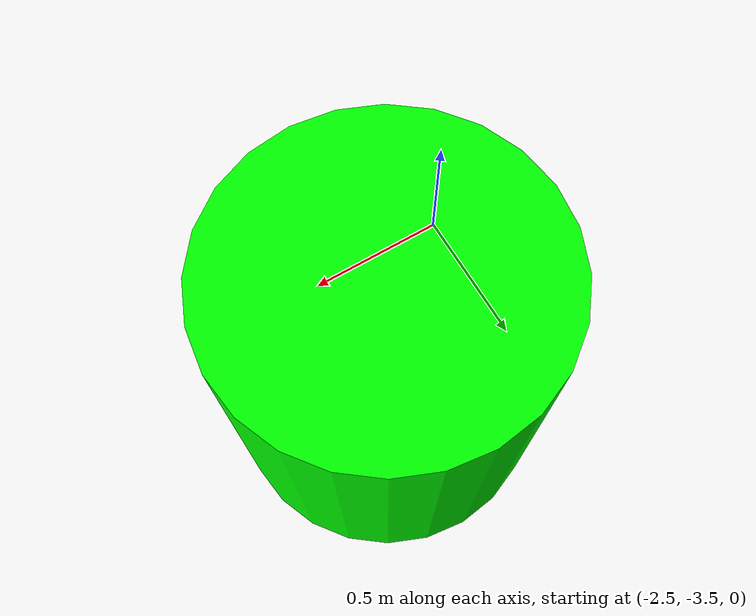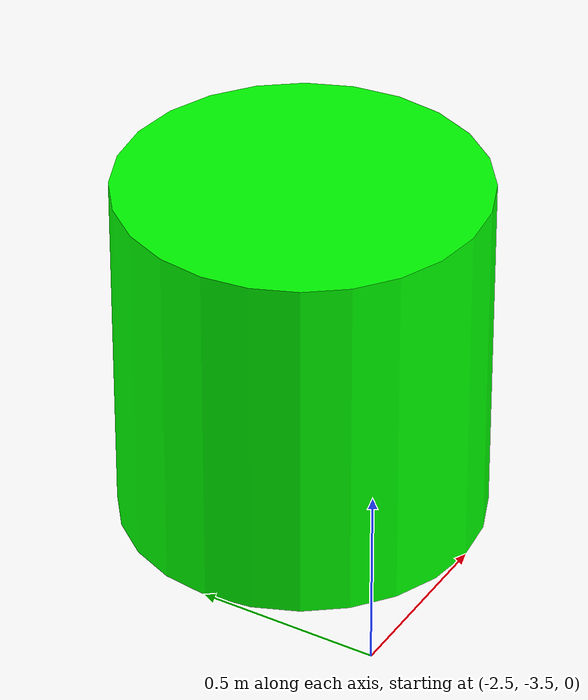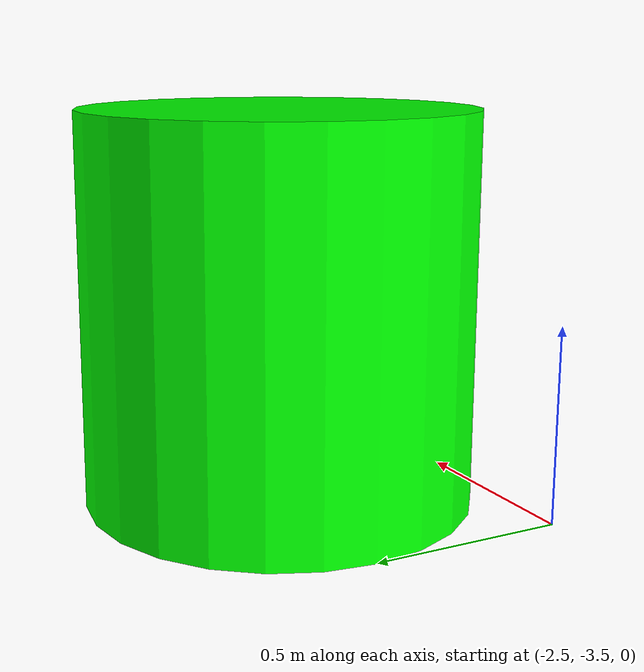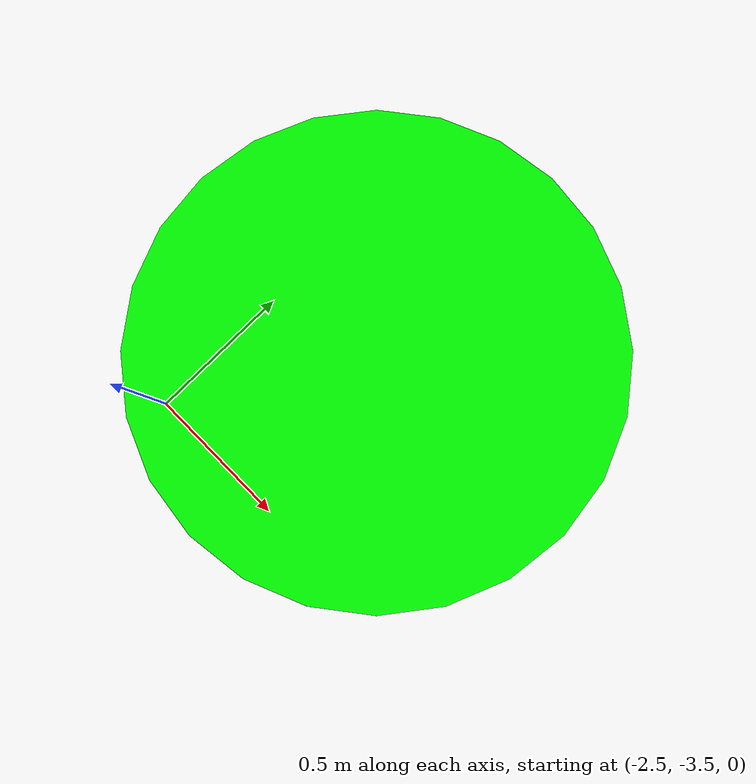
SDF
<?xml version="1.0" ?>
<sdf version="1.10">
    <model name="greenCylinder0_5x1">
      <static>true</static>
      <pose>-2 -3 0.5 0 0 0</pose>
      <link name="link">
        <temperature>120.0</temperature>
        <collision name="collision">
          <geometry><cylinder><radius>0.5</radius><length>1.0</length></cylinder></geometry>
        </collision>
        <visual name="visual">
          <geometry><cylinder><radius>0.5</radius><length>1.0</length></cylinder></geometry>
          <material>
            <ambient>0 1 0 1</ambient>
            <diffuse>0 1 0 1</diffuse>
          </material>
        <plugin
          filename="gz-sim-thermal-system"
          name="gz::sim::systems::Thermal">
          <temperature>340</temperature>
          <emissivity>0.9</emissivity>
        </plugin>
        </visual>
      </link>
    </model>
</sdf>
